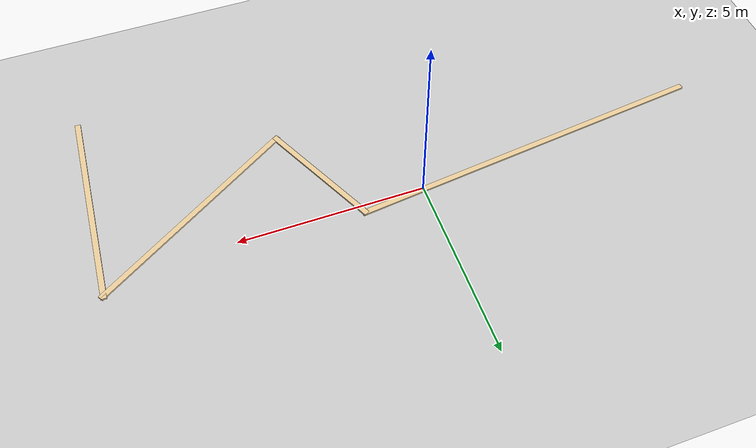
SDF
<sdf version="1.7">
 <world name="default">
  <light name="sun" type="directional">
   <pose>0 0 10 0 -0 0</pose>
   <diffuse>0.8 0.8 0.8 1</diffuse>
   <specular>0.2 0.2 0.2 1</specular>
   <attenuation>
    <range>1000</range>
    <constant>0.9</constant>
    <linear>0.01</linear>
    <quadratic>0.001</quadratic>
   </attenuation>
   <direction>-0.5 0.1 -0.9</direction>
   <spot><inner_angle>0</inner_angle><outer_angle>0</outer_angle><falloff>0</falloff></spot>
  </light>
  <model name="ground_plane">
   <static>1</static>
   <link name="link">
    <collision name="collision">
     <geometry><plane><normal>0 0 1</normal><size>100 100</size></plane></geometry>
     <surface>
      <contact><collide_bitmask>65535</collide_bitmask></contact>
      <friction><ode><mu>100</mu><mu2>50</mu2></ode></friction>
     </surface>
    </collision>
    <visual name="visual">
     <cast_shadows>0</cast_shadows>
     <geometry><plane><normal>0 0 1</normal><size>100 100</size></plane></geometry>
     <material>
      <script><uri>file://media/materials/scripts/gazebo.material</uri><name>Gazebo/Grey</name></script>
     </material>
    </visual>
   </link>
  </model>
  <gravity>0 0 -9.8</gravity>
  <magnetic_field>6e-06 2.3e-05 -4.2e-05</magnetic_field>
  <atmosphere type="adiabatic"/>
  <physics type="ode">
   <max_step_size>0.001</max_step_size>
   <real_time_factor>1</real_time_factor>
   <real_time_update_rate>1000</real_time_update_rate>
  </physics>
  <scene><ambient>0.4 0.4 0.4 1</ambient><background>0.7 0.7 0.7 1</background><shadows>1</shadows></scene>
  <spherical_coordinates>
   <surface_model>EARTH_WGS84</surface_model>
   <latitude_deg>0</latitude_deg>
   <longitude_deg>0</longitude_deg>
   <elevation>0</elevation>
   <heading_deg>0</heading_deg>
  </spherical_coordinates>
  <model name="linefollower">
   <pose>0.179958 -2.33537 0 0 -0 0</pose>
   <link name="Wall_14">
    <collision name="Wall_14_Collision">
     <geometry><box><size>9.98145 0.15 0.05</size></box></geometry>
     <pose>0 0 0.025 0 -0 0</pose>
    </collision>
    <visual name="Wall_14_Visual">
     <pose>0 0 0.025 0 -0 0</pose>
     <geometry><box><size>9.98145 0.15 0.05</size></box></geometry>
     <material>
      <script><uri>file://media/materials/scripts/gazebo.material</uri><name>Gazebo/Grey</name></script>
      <ambient>0.921569 0.807843 0.615686 1</ambient>
     </material>
     <meta><layer>0</layer></meta>
    </visual>
    <pose>-3.38525 2.02931 0 0 -0 0.110055</pose>
   </link>
   <link name="Wall_15">
    <collision name="Wall_15_Collision">
     <geometry><box><size>3.58851 0.15 0.05</size></box></geometry>
     <pose>0 0 0.025 0 -0 0</pose>
    </collision>
    <visual name="Wall_15_Visual">
     <pose>0 0 0.025 0 -0 0</pose>
     <geometry><box><size>3.58851 0.15 0.05</size></box></geometry>
     <material>
      <script><uri>file://media/materials/scripts/gazebo.material</uri><name>Gazebo/Grey</name></script>
      <ambient>0.921569 0.807843 0.615686 1</ambient>
     </material>
     <meta><layer>0</layer></meta>
    </visual>
    <pose>2.24026 1.00195 0 0 -0 -1.12614</pose>
   </link>
   <link name="Wall_16">
    <collision name="Wall_16_Collision">
     <geometry><box><size>6.3813 0.15 0.05</size></box></geometry>
     <pose>0 0 0.025 0 -0 0</pose>
    </collision>
    <visual name="Wall_16_Visual">
     <pose>0 0 0.025 0 -0 0</pose>
     <geometry><box><size>6.3813 0.15 0.05</size></box></geometry>
     <material>
      <script><uri>file://media/materials/scripts/gazebo.material</uri><name>Gazebo/Grey</name></script>
      <ambient>0.921569 0.807843 0.615686 1</ambient>
     </material>
     <meta><layer>0</layer></meta>
    </visual>
    <pose>5.61519 1.09659 0 0 -0 0.562628</pose>
   </link>
   <link name="Wall_17">
    <collision name="Wall_17_Collision">
     <geometry><box><size>5.69787 0.15 0.05</size></box></geometry>
     <pose>0 0 0.025 0 -0 0</pose>
    </collision>
    <visual name="Wall_17_Visual">
     <pose>0 0 0.025 0 -0 0</pose>
     <geometry><box><size>5.69787 0.15 0.05</size></box></geometry>
     <material>
      <script><uri>file://media/materials/scripts/gazebo.material</uri><name>Gazebo/Grey</name></script>
      <ambient>0.921569 0.807843 0.615686 1</ambient>
     </material>
     <meta><layer>0</layer></meta>
    </visual>
    <pose>8.10916 -0.012555 0 0 -0 -1.61631</pose>
   </link>
   <static>1</static>
  </model>
 </world>
</sdf>
